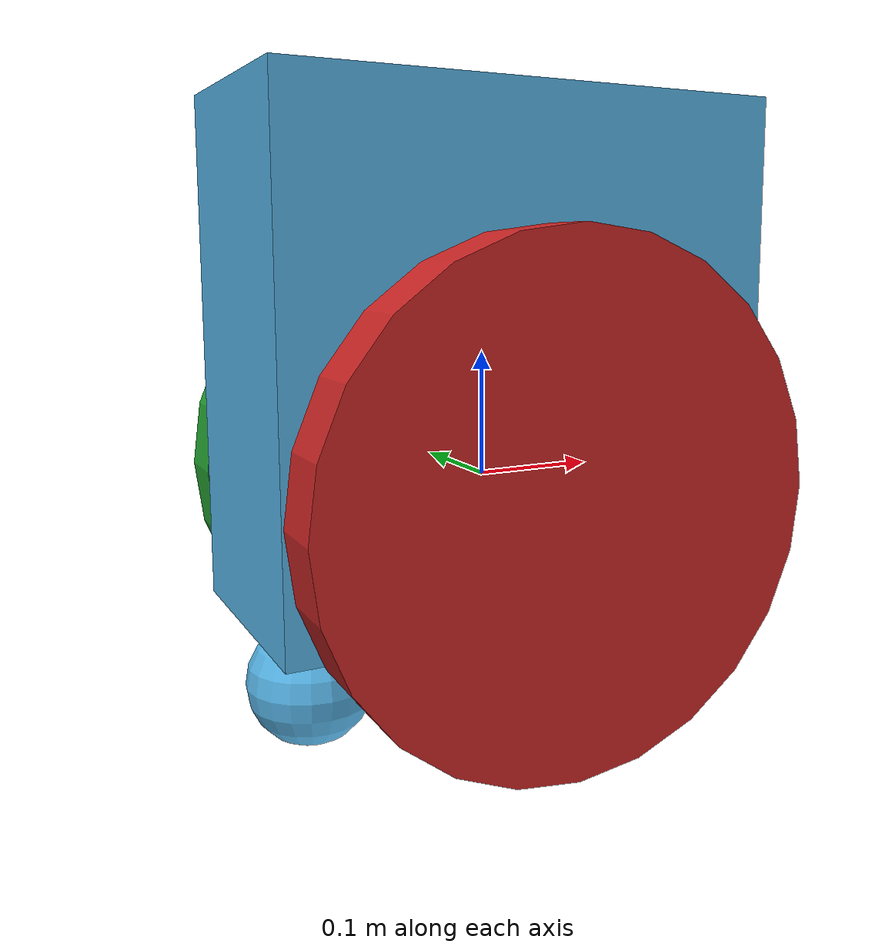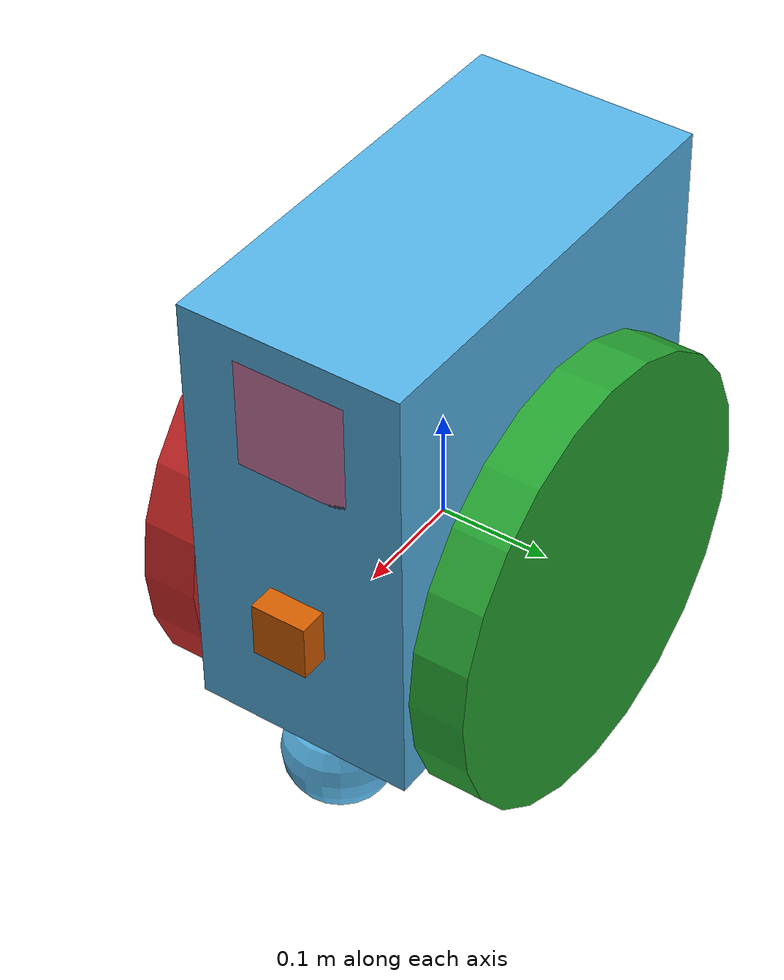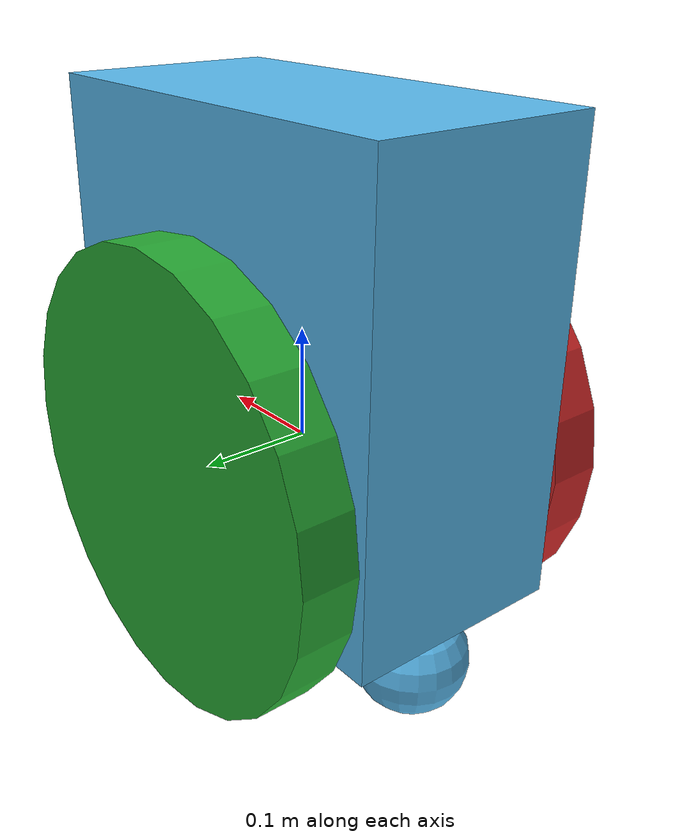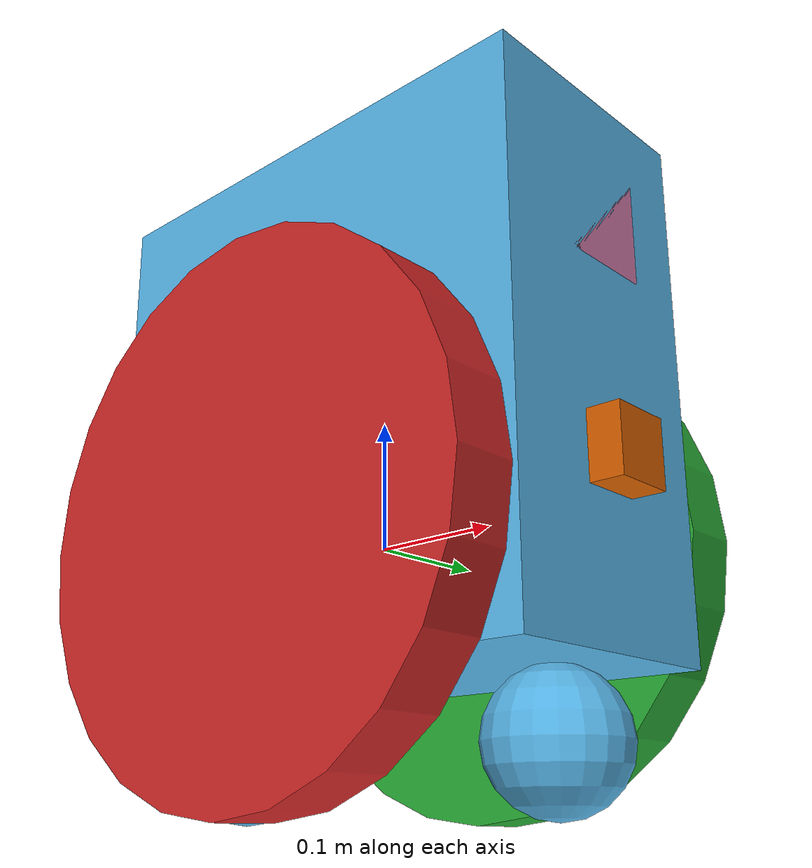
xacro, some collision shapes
<?xml version='1.0'?>

<robot name="my_robot" xmlns:xacro="http://www.ros.org/wiki/xacro">
<xacro:include filename="$(find my_robot)/urdf/my_robot.gazebo" />
                                                  <link name="robot_footprint"></link>

                                                  <joint name="robot_footprint_joint" type="fixed">
                                                    <origin xyz="0 0 0" rpy="0 0 0" />
                                                    <parent link="robot_footprint"/>
                                                    <child link="chassis" />
                                                  </joint>

                                                  <link name='chassis'>
                                                    <pose>0 0 0.1 0 0 0</pose>

                                                    <inertial>
                                                      <mass value="15.0"/>
                                                      <origin xyz="0.0 0 0" rpy=" 0 0 0"/>
                                                      <inertia
                                                          ixx="0.1" ixy="0" ixz="0"
                                                          iyy="0.1" iyz="0"
                                                          izz="0.1"
                                                      />
                                                    </inertial>

                                                    <collision name='collision'>
                                                      <origin xyz="0 0 0" rpy=" 0 0 0"/>
                                                      <geometry>
                                                        <box size=".4 .2 .1"/>
                                                      </geometry>
                                                    </collision>

                                                    <visual name='chassis_visual'>
                                                      <origin xyz="0 0 0.1" rpy=" 0 0 0"/>
                                                      <geometry>
                                                        <box size=".4 .2 .4"/>
                                                      </geometry>
                                                    </visual>

                                                    <collision name='back_caster_collision'>
                                                      <origin xyz="-0.15 0 -0.15" rpy=" 0 0 0"/>
                                                      <geometry>
                                                        <sphere radius="0.0499"/>
                                                      </geometry>
                                                    </collision>

                                                    <visual name='back_caster_visual'>
                                                      <origin xyz="-0.15 0 -0.15" rpy=" 0 0 0"/>
                                                      <geometry>
                                                        <sphere radius="0.05"/>
                                                      </geometry>
                                                    </visual>

                                                    <collision name='front_caster_collision'>
                                                      <origin xyz="0.15 0 -0.15" rpy=" 0 0 0"/>
                                                      <geometry>
                                                        <sphere radius="0.0499"/>
                                                      </geometry>
                                                    </collision>

                                                    <visual name='front_caster_visual'>
                                                      <origin xyz="0.15 0 -0.15" rpy=" 0 0 0"/>
                                                      <geometry>
                                                        <sphere radius="0.05"/>
                                                      </geometry>
                                                    </visual>

                                                  </link>
  <joint type="continuous" name="right_wheel_hinge">
    <origin xyz="0 -0.13 0" rpy="0 0 0"/>
    <child link="right_wheel"/>
    <parent link="chassis"/>
    <axis xyz="0 0.12 0" rpy="0 0 0"/>
    <limit effort="10000" velocity="1000"/>
    <dynamics damping="1.0" friction="1.0"/>
  </joint>

   <link name="right_wheel">
    <visual>
      <origin xyz="0.0 0.0 0.0" rpy="0 1.5707 1.5707"/>
      <geometry>
        <cylinder length="0.05" radius="0.2"/>
      </geometry>
    </visual>
    <collision>
      <origin xyz="0.0 0.0 0.0" rpy="0.0 1.5707 1.5707"/>
      <geometry>
        <cylinder length="0.05" radius="0.2"/>
      </geometry>
    </collision>
    <inertial>
      <origin xyz="0.0 0.0 0.0" rpy="0.0 1.5707 1.5707"/>
      <mass value="5"/>
      <inertia
          ixx="0.1" ixy="0" ixz="0"
          iyy="0.1" iyz="0"
          izz="0.1"
      />
    </inertial>
  </link>

  <joint type="continuous" name="left_wheel_hinge">
    <origin xyz="0 0.13 0" rpy="0 0 0"/>
    <child link="left_wheel"/>
    <parent link="chassis"/>
    <axis xyz="0 0.12 0" rpy="0 0 0"/>
    <limit effort="10000" velocity="1000"/>
    <dynamics damping="1.0" friction="1.0"/>
  </joint>

   <link name="left_wheel">
    <visual>
      <origin xyz="0.0 0.0 0.0" rpy="0 01.5707 1.5707"/>
      <geometry>
        <cylinder length="0.05" radius="0.2"/>
      </geometry>
    </visual>
    <collision>
      <origin xyz="0.0 0.0 0.0" rpy="0.0 1.5707 1.5707"/>
      <geometry>
        <cylinder length="0.05" radius="0.2"/>
      </geometry>
    </collision>
    <inertial>
      <origin xyz="0.0 0.0 0.0" rpy="0.0 1.5707 1.5707"/>
      <mass value="5"/>
      <inertia
          ixx="0.1" ixy="0" ixz="0"
          iyy="0.1" iyz="0"
          izz="0.1"
      />
    </inertial>
  </link>

  <joint name="camera_optical_joint" type="fixed">
    <origin xyz="0 0 0" rpy="-1.5707 0 -1.5707"/>
    <parent link="camera_link"/>
    <child link="camera_link_optical"/>
  </joint>

  <link name="camera_link_optical"></link>

  <joint type="fixed" name="camera_joint">
    <origin xyz="0.2 0 0" rpy="0 0 0"/>
    <child link="camera_link"/>
    <parent link="chassis"/>
    <axis xyz="0 1 0" rpy="0 0 0"/>
    <limit effort="10000" velocity="1000"/>
    <dynamics damping="1.0" friction="1.0"/>
  </joint>

   <link name="camera_link">
    <visual>
      <origin xyz="0.0 0.0 0.03" rpy="0 0 0"/>
        <geometry>
          <box size=".05 .05 .05"/>
        </geometry>
    </visual>
    <collision>
      <origin xyz="0.0 0.0 0.0" rpy="0.0 0.0 0.0"/>
        <geometry>
          <box size=".05 .05 .05"/>
        </geometry>
    </collision>
    <inertial>
      <origin xyz="0.0 0.0 0.0" rpy="0.0 0 0"/>
      <mass value="0.1"/>
      <inertia
          ixx="0.000001" ixy="0" ixz="0"
          iyy="0.000001" iyz="0"
          izz="0.000001"
      />
        <geometry>
          <box size=".05 .05 .05"/>
        </geometry>
    </inertial>
  </link>

  <joint type="fixed" name="hokuyo_joint">
    <origin xyz="0.15 0 0.22" rpy="0 0 0"/>
    <child link="hokuyo"/>
    <parent link="chassis"/>
    <axis xyz="0 1 0" rpy="0 0 0"/>
    <limit effort="10000" velocity="1000"/>
    <dynamics damping="1.0" friction="1.0"/>
  </joint>

   <link name="hokuyo">
    <visual>
      <origin xyz="0.0 0.0 0.1135" rpy="0 0 0"/>
        <geometry>
          <mesh filename="package://my_robot/meshes/hokuyo.dae"/>
        </geometry>
    </visual>
    <collision>
      <origin xyz="0.0 0.0 0.0" rpy="0.0 0.0 0.0"/>
        <geometry>
          <box size=".1 .1 .1"/>
        </geometry>
    </collision>
    <inertial>
      <origin xyz="0.0 0.0 0.0" rpy="0.0 0 0"/>
      <mass value="0.1"/>
      <inertia
          ixx="0.000001" ixy="0" ixz="0"
          iyy="0.000001" iyz="0"
          izz="0.000001"
      />
        <geometry>
          <box size=".1 .1 .1"/>
        </geometry>
    </inertial>
  </link>
<gazebo reference="left_wheel">
    <material>Gazebo/Green</material>
</gazebo>

<gazebo reference="right_wheel">
    <material>Gazebo/Red</material>
</gazebo>

</robot>
